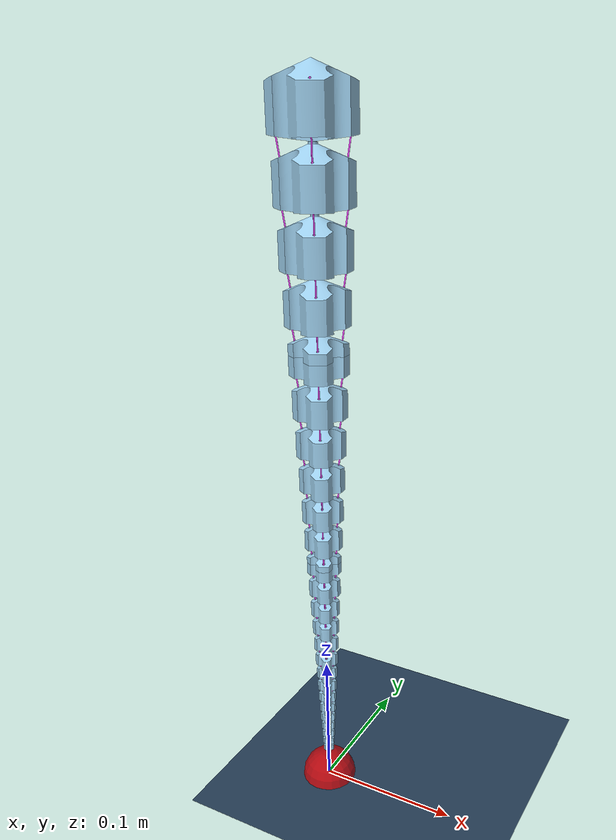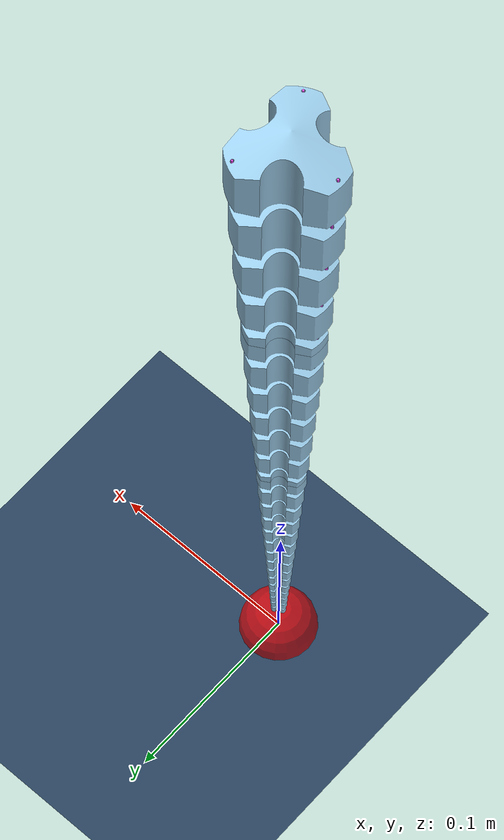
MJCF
<mujoco model="scene">
    <include file="spirob.xml" />

    <visual>
        <headlight diffuse="0.6 0.6 0.6" ambient="0.3 0.3 0.3" specular="0 0 0" />
        <rgba haze="0.15 0.25 0.35 1" />
        <global azimuth="160" elevation="-20" offwidth="1920" offheight="1080" />
    </visual>

    <asset>
        <texture type="skybox" builtin="gradient" rgb1="0.3 0.5 0.7" rgb2="0 0 0" width="512"
            height="3072" />
        <texture type="2d" name="groundplane" builtin="checker" mark="edge" rgb1="0.2 0.3 0.4"
            rgb2="0.1 0.2 0.3"
            markrgb="0.8 0.8 0.8" width="300" height="300" />
        <material name="groundplane" texture="groundplane" texuniform="true" texrepeat="5 5"
            reflectance="0.2" />
    </asset>

    <worldbody>
        <light pos="0 0 3.5" dir="0 0 -1" directional="true" />
        <geom name="floor" size="0 0 0.05" pos="0 0 0" type="plane" material="groundplane" />

        <!-- Target for end-effector tracking -->
        <body name="target" mocap="true">
            <geom name="target_vis" type="sphere" size="0.02" rgba="1 0 0 0.7" contype="0" conaffinity="0"/>
        </body>
    </worldbody>
</mujoco>

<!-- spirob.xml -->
<!-- Generated using onshape-to-robot -->
<!-- Onshape https://cad.onshape.com/documents/11f47046aadde998d93845f5/w/2219ecd5bc279fe0ecc107c4/e/786bc53f5acd65211f6c0c24 -->
<mujoco model="my-SpiRob">
  <compiler angle="radian" meshdir="assets" autolimits="true"/>
  <default>
    <default class="my-SpiRob">
      <joint frictionloss="0.1" armature="0.005"/>
      <position kp="50" dampratio="1"/>
      <default class="visual">
        <geom type="mesh" contype="0" conaffinity="0" group="2"/>
      </default>
      <default class="collision">
        <geom group="3"/>
      </default>
    </default>
  </default>
  <worldbody>
    <!-- Link segment_1__configuration_default -->
    <body name="segment_1__configuration_default" pos="0 0 0.5" euler="0 -1.5708 0" childclass="my-SpiRob">
      <inertial pos="-0.023719 1.84225e-08 1.05571e-08" mass="0.052215" fullinertia="1.47577e-05 1.26546e-05 1.26546e-05 -1.09343e-11 1.25193e-11 -2.59551e-12"/>
      <!-- Part segment_1__configuration_default -->
      <geom type="mesh" class="visual" pos="0 0 0" quat="1 0 0 0" mesh="segment_1__configuration_default" material="segment_1__configuration_default_material"/>
      <geom type="mesh" class="collision" pos="0 0 0" quat="1 0 0 0" mesh="segment_1__configuration_default" material="segment_1__configuration_default_material"/>
      <!-- Frame 1 -->
      <site group="3" name="1" pos="-0.0100544 -5.44356e-20 0.0250952" quat="0.5 0.5 0.5 0.5"/>
      <!-- Frame 2 -->
      <site group="3" name="2" pos="-0.0400151 -5.44356e-20 0.0250952" quat="0.5 0.5 0.5 0.5"/>
      <!-- Frame 3 -->
      <site group="3" name="3" pos="-0.0100552 0.0217331 -0.0125476" quat="0.5 0.5 0.5 0.5"/>
      <!-- Frame 4 -->
      <site group="3" name="4" pos="-0.0400151 0.0217331 -0.0125476" quat="0.5 0.5 0.5 0.5"/>
      <!-- Frame 5 -->
      <site group="3" name="5" pos="-0.040015 -0.0217331 -0.0125476" quat="0.5 0.5 0.5 0.5"/>
      <!-- Frame 6 -->
      <site group="3" name="6" pos="-0.0100551 -0.0217331 -0.0125476" quat="0.5 0.5 0.5 0.5"/>
      <!-- Link segment_2__configuration_default -->
      <body name="segment_2__configuration_default" pos="-0.042844 -1.48645e-19 -8.96728e-22" quat="6.93681e-16 -0 1 8.33698e-16">
        <!-- Joint from segment_1__configuration_default to segment_2__configuration_default -->
        <joint axis="0 0 1" name="x_1" type="hinge" damping="0.1"/>
        <joint axis="0 1 0" name="y_1" type="hinge" damping="0.1"/>
        <inertial pos="0.0218709 1.13482e-08 -5.9967e-09" mass="0.040989" fullinertia="9.84761e-06 8.45722e-06 8.45722e-06 1.22598e-13 1.0973e-11 2.50017e-12"/>
        <!-- Part segment_2__configuration_default -->
        <geom type="mesh" class="visual" pos="-0.042844 -1.28885e-35 2.62344e-18" quat="9.60979e-18 -0 -1 5.46996e-17" mesh="segment_2__configuration_default" material="segment_2__configuration_default_material"/>
        <geom type="mesh" class="collision" pos="-0.042844 -1.28885e-35 2.62344e-18" quat="9.60979e-18 -0 -1 5.46996e-17" mesh="segment_2__configuration_default" material="segment_2__configuration_default_material"/>
        <!-- Frame 7 -->
        <site group="3" name="7" pos="0.00916355 -0.0198802 0.0114778" quat="0.5 -0.5 -0.5 0.5"/>
        <!-- Frame 8 -->
        <site group="3" name="8" pos="0.00916268 -5.44356e-20 -0.0229556" quat="0.5 -0.5 -0.5 0.5"/>
        <!-- Frame 9 -->
        <site group="3" name="9" pos="0.00916308 0.0198802 0.0114778" quat="0.5 -0.5 -0.5 0.5"/>
        <!-- Frame 10 -->
        <site group="3" name="10" pos="0.036951 0.0198802 0.0114778" quat="0.5 -0.5 -0.5 0.5"/>
        <!-- Frame 11 -->
        <site group="3" name="11" pos="0.036951 -5.44356e-20 -0.0229556" quat="0.5 -0.5 -0.5 0.5"/>
        <!-- Frame 12 -->
        <site group="3" name="12" pos="0.0369508 -0.0198802 0.0114778" quat="0.5 -0.5 -0.5 0.5"/>
        <!-- Link segment_3__configuration_default -->
        <body name="segment_3__configuration_default" pos="0.0395269 2.51311e-19 -2.42033e-18" quat="1 -0 0 7.01374e-19">
          <!-- Joint from segment_2__configuration_default to segment_3__configuration_default -->
          <joint axis="0 0 1" name="x_2" type="hinge" damping="0.1"/>
          <joint axis="0 1 0" name="y_2" type="hinge" damping="0.1"/>
          <inertial pos="0.0201766 1.11039e-08 -5.4109e-09" mass="0.0321555" fullinertia="6.5695e-06 5.64464e-06 5.64464e-06 7.62967e-14 7.34676e-12 1.60018e-12"/>
          <!-- Part segment_3__configuration_default -->
          <geom type="mesh" class="visual" pos="-0.0823709 0 5.04376e-18" quat="0 0 1 0" mesh="segment_3__configuration_default" material="segment_3__configuration_default_material"/>
          <geom type="mesh" class="collision" pos="-0.0823709 0 5.04376e-18" quat="0 0 1 0" mesh="segment_3__configuration_default" material="segment_3__configuration_default_material"/>
          <!-- Frame 13 -->
          <site group="3" name="13" pos="0.0341241 0.0181707 0.0104908" quat="0.5 -0.5 -0.5 0.5"/>
          <!-- Frame 14 -->
          <site group="3" name="14" pos="0.00834014 0.0181707 0.0104908" quat="0.5 -0.5 -0.5 0.5"/>
          <!-- Frame 15 -->
          <site group="3" name="15" pos="0.00834105 -0.0181707 0.0104908" quat="0.5 -0.5 -0.5 0.5"/>
          <!-- Frame 16 -->
          <site group="3" name="16" pos="0.0341239 -0.0181707 0.0104908" quat="0.5 -0.5 -0.5 0.5"/>
          <!-- Frame 17 -->
          <site group="3" name="17" pos="0.0341241 -5.44356e-20 -0.0209817" quat="0.5 -0.5 -0.5 0.5"/>
          <!-- Frame 18 -->
          <site group="3" name="18" pos="0.00834012 -5.44356e-20 -0.0209817" quat="0.5 -0.5 -0.5 0.5"/>
          <!-- Link segment_4__configuration_default -->
          <body name="segment_4__configuration_default" pos="0.0364667 3.56718e-18 -2.23294e-18" quat="1 0 -1.11022e-16 8.67362e-19">
            <!-- Joint from segment_3__configuration_default to segment_4__configuration_default -->
            <joint axis="0 0 1" name="x_3" type="hinge" damping="0.1"/>
            <joint axis="0 1 0" name="y_3" type="hinge" damping="0.1"/>
            <inertial pos="0.0186135 1.05568e-08 -1.17938e-08" mass="0.0252212" fullinertia="4.3814e-06 3.76659e-06 3.76659e-06 3.94885e-14 4.94e-12 3.07795e-13"/>
            <!-- Part segment_4__configuration_default -->
            <geom type="mesh" class="visual" pos="-0.118838 -7.70372e-34 7.2767e-18" quat="0 0 1 0" mesh="segment_4__configuration_default" material="segment_4__configuration_default_material"/>
            <geom type="mesh" class="collision" pos="-0.118838 -7.70372e-34 7.2767e-18" quat="0 0 1 0" mesh="segment_4__configuration_default" material="segment_4__configuration_default_material"/>
            <!-- Frame 19 -->
            <site group="3" name="19" pos="0.00758095 0.0165936 0.0095803" quat="0.5 -0.5 -0.5 0.5"/>
            <!-- Frame 20 -->
            <site group="3" name="20" pos="0.00758153 -5.44356e-20 -0.0191606" quat="0.5 -0.5 -0.5 0.5"/>
            <!-- Frame 21 -->
            <site group="3" name="21" pos="0.00758306 -0.0165936 0.0095803" quat="0.5 -0.5 -0.5 0.5"/>
            <!-- Frame 22 -->
            <site group="3" name="22" pos="0.0315159 -0.0165936 0.0095803" quat="0.5 -0.5 -0.5 0.5"/>
            <!-- Frame 23 -->
            <site group="3" name="23" pos="0.031516 0.0165936 0.0095803" quat="0.5 -0.5 -0.5 0.5"/>
            <!-- Frame 24 -->
            <site group="3" name="24" pos="0.031516 -5.44356e-20 -0.0191606" quat="0.5 -0.5 -0.5 0.5"/>
            <!-- Link segment_5_1__configuration_default -->
            <body name="segment_5_1__configuration_default" pos="0.0336433 -3.46945e-18 -2.06006e-18" quat="1 0 0 0">
              <!-- Joint from segment_4__configuration_default to segment_5_1__configuration_default -->
              <joint axis="0 0 1" name="x_4" type="hinge" damping="0.1"/>
              <joint axis="0 1 0" name="y_4" type="hinge" damping="0.1"/>
              <inertial pos="0.0171713 4.27188e-09 -1.04214e-08" mass="0.0197778" fullinertia="2.92117e-06 2.51273e-06 2.51273e-06 7.33127e-13 1.21513e-13 -9.49471e-14"/>
              <!-- Part segment_5_2__configuration_default -->
              <geom type="mesh" class="visual" pos="-0.152481 9.32588e-18 9.33676e-18" quat="3.06162e-17 0 -1 -4.03897e-28" mesh="segment_5_2__configuration_default" material="segment_5_2__configuration_default_material"/>
              <geom type="mesh" class="collision" pos="-0.152481 9.32588e-18 9.33676e-18" quat="3.06162e-17 0 -1 -4.03897e-28" mesh="segment_5_2__configuration_default" material="segment_5_2__configuration_default_material"/>
              <!-- Part segment_5_1__configuration_default -->
              <geom type="mesh" class="visual" pos="-0.152481 -1.09476e-47 9.33676e-18" quat="0 0 1 0" mesh="segment_5_1__configuration_default" material="segment_5_1__configuration_default_material"/>
              <geom type="mesh" class="collision" pos="-0.152481 -1.09476e-47 9.33676e-18" quat="0 0 1 0" mesh="segment_5_1__configuration_default" material="segment_5_1__configuration_default_material"/>
              <!-- Frame 25 -->
              <site group="3" name="25" pos="0.00696165 0.0151386 0.00874025" quat="0.5 -0.5 -0.5 0.5"/>
              <!-- Frame 26 -->
              <site group="3" name="26" pos="0.00696375 -0.0151386 0.00874025" quat="0.5 -0.5 -0.5 0.5"/>
              <!-- Frame 27 -->
              <site group="3" name="27" pos="0.00696158 -5.44356e-20 -0.0174805" quat="0.5 -0.5 -0.5 0.5"/>
              <!-- Frame 28 -->
              <site group="3" name="28" pos="0.0290589 0.0151386 0.00874025" quat="0.5 -0.5 -0.5 0.5"/>
              <!-- Frame 29 -->
              <site group="3" name="29" pos="0.0290589 -8.06032e-19 -0.0174805" quat="0.5 -0.5 -0.5 0.5"/>
              <!-- Frame 30 -->
              <site group="3" name="30" pos="0.0290587 -0.0151386 0.00874025" quat="0.5 -0.5 -0.5 0.5"/>
              <!-- Link segment_6__configuration_default -->
              <body name="segment_6__configuration_default" pos="0.0310386 6.93889e-18 -1.90057e-18" quat="1 0 0 0">
                <!-- Joint from segment_5_1__configuration_default to segment_6__configuration_default -->
                <joint axis="0 0 1" name="x_5" type="hinge" damping="0.1"/>
                <joint axis="0 1 0" name="y_5" type="hinge" damping="0.1"/>
                <inertial pos="0.0158407 9.68272e-09 -2.25308e-08" mass="0.0155055" fullinertia="1.94689e-06 1.67579e-06 1.67579e-06 1.39054e-13 5.12254e-13 -3.50338e-13"/>
                <!-- Part segment_6__configuration_default -->
                <geom type="mesh" class="visual" pos="-0.183519 0 1.12373e-17" quat="0 0 1 0" mesh="segment_6__configuration_default" material="segment_6__configuration_default_material"/>
                <geom type="mesh" class="collision" pos="-0.183519 0 1.12373e-17" quat="0 0 1 0" mesh="segment_6__configuration_default" material="segment_6__configuration_default_material"/>
                <!-- Frame 31 -->
                <site group="3" name="31" pos="0.00623536 0.0137962 0.00796523" quat="0.5 -0.5 -0.5 0.5"/>
                <!-- Frame 32 -->
                <site group="3" name="32" pos="0.00623682 -0.0137962 0.00796523" quat="0.5 -0.5 -0.5 0.5"/>
                <!-- Frame 33 -->
                <site group="3" name="33" pos="0.0062347 -5.44356e-20 -0.0159305" quat="0.5 -0.5 -0.5 0.5"/>
                <!-- Frame 34 -->
                <site group="3" name="34" pos="0.0268901 0.0137962 0.00796523" quat="0.5 -0.5 -0.5 0.5"/>
                <!-- Frame 35 -->
                <site group="3" name="35" pos="0.0268901 -5.44356e-20 -0.0159305" quat="0.5 -0.5 -0.5 0.5"/>
                <!-- Frame 36 -->
                <site group="3" name="36" pos="0.0268899 -0.0137962 0.00796523" quat="0.5 -0.5 -0.5 0.5"/>
                <!-- Link segment_7__configuration_default -->
                <body name="segment_7__configuration_default" pos="0.0286355 3.46945e-17 -1.75342e-18" quat="1 -4.2727e-16 4.44089e-16 -2.83183e-19">
                  <!-- Joint from segment_6__configuration_default to segment_7__configuration_default -->
                  <joint axis="0 0 1" name="x_6" type="hinge" damping="0.1"/>
                  <joint axis="0 1 0" name="y_6" type="hinge" damping="0.1"/>
                  <inertial pos="0.0146131 9.45033e-09 -2.1313e-08" mass="0.0121525" fullinertia="1.29707e-06 1.11725e-06 1.11724e-06 9.35572e-14 3.44514e-13 -2.76958e-13"/>
                  <!-- Part segment_7__configuration_default -->
                  <geom type="mesh" class="visual" pos="-0.212155 0 1.29907e-17" quat="0 0 1 0" mesh="segment_7__configuration_default" material="segment_7__configuration_default_material"/>
                  <geom type="mesh" class="collision" pos="-0.212155 0 1.29907e-17" quat="0 0 1 0" mesh="segment_7__configuration_default" material="segment_7__configuration_default_material"/>
                  <!-- Frame 37 -->
                  <site group="3" name="37" pos="0.00564008 0.0125577 0.00725022" quat="0.5 -0.5 -0.5 0.5"/>
                  <!-- Frame 38 -->
                  <site group="3" name="38" pos="0.00563888 -5.44356e-20 -0.0145004" quat="0.5 -0.5 -0.5 0.5"/>
                  <!-- Frame 39 -->
                  <site group="3" name="39" pos="0.00564067 -0.0125577 0.00725022" quat="0.5 -0.5 -0.5 0.5"/>
                  <!-- Frame 40 -->
                  <site group="3" name="40" pos="0.0248419 -0.0125577 0.00725022" quat="0.5 -0.5 -0.5 0.5"/>
                  <!-- Frame 41 -->
                  <site group="3" name="41" pos="0.0248421 0.0125577 0.00725022" quat="0.5 -0.5 -0.5 0.5"/>
                  <!-- Frame 42 -->
                  <site group="3" name="42" pos="0.0248421 -5.44356e-20 -0.0145004" quat="0.5 -0.5 -0.5 0.5"/>
                  <!-- Link segment_8__configuration_default -->
                  <body name="segment_8__configuration_default" pos="0.0264185 4.19961e-17 -1.61767e-18" quat="1 -0 1.249e-16 1.25123e-18">
                    <!-- Joint from segment_7__configuration_default to segment_8__configuration_default -->
                    <joint axis="0 0 1" name="x_7" type="hinge" damping="0.1"/>
                    <joint axis="0 1 0" name="y_7" type="hinge" damping="0.1"/>
                    <inertial pos="0.0134806 9.2626e-09 -2.02192e-08" mass="0.00952109" fullinertia="8.63766e-07 7.44581e-07 7.44579e-07 6.32964e-14 2.31894e-13 -2.16115e-13"/>
                    <!-- Part segment_8__configuration_default -->
                    <geom type="mesh" class="visual" pos="-0.238574 -3.62701e-19 1.46084e-17" quat="0 0 1 0" mesh="segment_8__configuration_default" material="segment_8__configuration_default_material"/>
                    <geom type="mesh" class="collision" pos="-0.238574 -3.62701e-19 1.46084e-17" quat="0 0 1 0" mesh="segment_8__configuration_default" material="segment_8__configuration_default_material"/>
                    <!-- Frame 43 -->
                    <site group="3" name="43" pos="0.0229527 -4.17137e-19 -0.0131811" quat="0.5 -0.5 -0.5 0.5"/>
                    <!-- Frame 44 -->
                    <site group="3" name="44" pos="0.00508945 -4.17137e-19 -0.0131811" quat="0.5 -0.5 -0.5 0.5"/>
                    <!-- Frame 45 -->
                    <site group="3" name="45" pos="0.00509111 0.0114152 0.00659057" quat="0.5 -0.5 -0.5 0.5"/>
                    <!-- Frame 46 -->
                    <site group="3" name="46" pos="0.0229527 0.0114152 0.00659057" quat="0.5 -0.5 -0.5 0.5"/>
                    <!-- Frame 47 -->
                    <site group="3" name="47" pos="0.0229525 -0.0114152 0.00659057" quat="0.5 -0.5 -0.5 0.5"/>
                    <!-- Frame 48 -->
                    <site group="3" name="48" pos="0.00509068 -0.0114152 0.00659057" quat="0.5 -0.5 -0.5 0.5"/>
                    <!-- Link segment_9__configuration_default -->
                    <body name="segment_9__configuration_default" pos="0.0243731 2.92174e-17 -1.49242e-18" quat="1 -4.99676e-16 3.33067e-16 3.44807e-18">
                      <!-- Joint from segment_8__configuration_default to segment_9__configuration_default -->
                      <joint axis="0 0 1" name="x_8" type="hinge" damping="0.1"/>
                      <joint axis="0 1 0" name="y_8" type="hinge" damping="0.1"/>
                      <inertial pos="0.0124357 9.25317e-09 -1.95027e-08" mass="0.00745628" fullinertia="5.74939e-07 4.96005e-07 4.96003e-07 4.4176e-14 1.56471e-13 -1.80729e-13"/>
                      <!-- Part segment_9__configuration_default -->
                      <geom type="mesh" class="visual" pos="-0.262947 1.2326e-32 1.61008e-17" quat="3.06162e-17 -0 -1 6.37496e-17" mesh="segment_9__configuration_default" material="segment_9__configuration_default_material"/>
                      <geom type="mesh" class="collision" pos="-0.262947 1.2326e-32 1.61008e-17" quat="3.06162e-17 -0 -1 6.37496e-17" mesh="segment_9__configuration_default" material="segment_9__configuration_default_material"/>
                      <!-- Frame 49 -->
                      <site group="3" name="49" pos="0.0212094 -0.0103611 0.00598198" quat="0.5 -0.5 -0.5 0.5"/>
                      <!-- Frame 50 -->
                      <site group="3" name="50" pos="0.0045823 -0.0103611 0.00598198" quat="0.5 -0.5 -0.5 0.5"/>
                      <!-- Frame 52 -->
                      <site group="3" name="52" pos="0.0212096 0.0103611 0.00598198" quat="0.5 -0.5 -0.5 0.5"/>
                      <!-- Frame 53 -->
                      <site group="3" name="53" pos="0.00458299 0.0103611 0.00598198" quat="0.5 -0.5 -0.5 0.5"/>
                      <!-- Frame 54 -->
                      <site group="3" name="54" pos="0.00458181 -5.44356e-20 -0.011964" quat="0.5 -0.5 -0.5 0.5"/>
                      <!-- Frame 55 -->
                      <site group="3" name="55" pos="0.0212095 -5.44356e-20 -0.011964" quat="0.5 -0.5 -0.5 0.5"/>
                      <!-- Link segment_10__configuration_default -->
                      <body name="segment_10__configuration_default" pos="0.0224861 -1.98059e-18 -1.37688e-18" quat="1 0 1.11022e-16 -1.0641e-17">
                        <!-- Joint from segment_9__configuration_default to segment_10__configuration_default -->
                        <joint axis="0 0 1" name="x_9" type="hinge" damping="0.1"/>
                        <joint axis="0 1 0" name="y_9" type="hinge" damping="0.1"/>
                        <inertial pos="0.0114718 1.09038e-08 -1.15964e-08" mass="0.00583625" fullinertia="3.82493e-07 3.30251e-07 3.30251e-07 2.66586e-14 1.13152e-13 -3.34482e-14"/>
                        <!-- Part segment_10__configuration_default -->
                        <geom type="mesh" class="visual" pos="-0.285433 -1.2326e-32 1.74777e-17" quat="0 0 1 0" mesh="segment_10__configuration_default" material="segment_10__configuration_default_material"/>
                        <geom type="mesh" class="collision" pos="-0.285433 -1.2326e-32 1.74777e-17" quat="0 0 1 0" mesh="segment_10__configuration_default" material="segment_10__configuration_default_material"/>
                        <!-- Frame 51 -->
                        <site group="3" name="51" pos="0.0196014 -5.44356e-20 -0.010841" quat="0.5 -0.5 -0.5 0.5"/>
                        <!-- Frame 56 -->
                        <site group="3" name="56" pos="0.00411437 0.00938862 0.00542052" quat="0.5 -0.5 -0.5 0.5"/>
                        <!-- Frame 57 -->
                        <site group="3" name="57" pos="0.00411352 -5.44356e-20 -0.010841" quat="0.5 -0.5 -0.5 0.5"/>
                        <!-- Frame 58 -->
                        <site group="3" name="58" pos="0.00411448 -0.00938862 0.00542052" quat="0.5 -0.5 -0.5 0.5"/>
                        <!-- Frame 59 -->
                        <site group="3" name="59" pos="0.0196013 0.00938862 0.00542052" quat="0.5 -0.5 -0.5 0.5"/>
                        <!-- Frame 60 -->
                        <site group="3" name="60" pos="0.0196012 -0.00938862 0.00542052" quat="0.5 -0.5 -0.5 0.5"/>
                        <!-- Link segment_11_2__configuration_default -->
                        <body name="segment_11_2__configuration_default" pos="0.0207452 5.55112e-17 -1.27028e-18" quat="1 5.51286e-16 0 -2.11798e-17">
                          <!-- Joint from segment_10__configuration_default to segment_11_2__configuration_default -->
                          <joint axis="0 0 1" name="x_10" type="hinge" damping="0.1"/>
                          <joint axis="0 1 0" name="y_10" type="hinge" damping="0.1"/>
                          <inertial pos="0.0105825 4.66794e-09 -4.96433e-09" mass="0.00456538" fullinertia="2.54326e-07 2.19766e-07 2.19766e-07 8.8537e-14 5.7459e-14 -8.39475e-15"/>
                          <!-- Part segmentt_11_1__configuration_default -->
                          <geom type="mesh" class="visual" pos="-0.306178 0 1.8748e-17" quat="0 0 1 0" mesh="segmentt_11_1__configuration_default" material="segmentt_11_1__configuration_default_material"/>
                          <geom type="mesh" class="collision" pos="-0.306178 0 1.8748e-17" quat="0 0 1 0" mesh="segmentt_11_1__configuration_default" material="segmentt_11_1__configuration_default_material"/>
                          <!-- Part segment_11_2__configuration_default -->
                          <geom type="mesh" class="visual" pos="-0.306178 0 1.8748e-17" quat="3.30788e-17 0 -1 4.19873e-17" mesh="segment_11_2__configuration_default" material="segment_11_2__configuration_default_material"/>
                          <geom type="mesh" class="collision" pos="-0.306178 0 1.8748e-17" quat="3.30788e-17 0 -1 4.19873e-17" mesh="segment_11_2__configuration_default" material="segment_11_2__configuration_default_material"/>
                          <!-- Frame 61 -->
                          <site group="3" name="61" pos="0.0180827 -0.00849142 0.00490253" quat="0.5 -0.5 -0.5 0.5"/>
                          <!-- Frame 62 -->
                          <site group="3" name="62" pos="0.00373368 -0.00849142 0.00490253" quat="0.5 -0.5 -0.5 0.5"/>
                          <!-- Frame 63 -->
                          <site group="3" name="63" pos="0.00373261 -5.44356e-20 -0.00980505" quat="0.5 -0.5 -0.5 0.5"/>
                          <!-- Frame 64 -->
                          <site group="3" name="64" pos="0.0180829 -5.44356e-20 -0.00980505" quat="0.5 -0.5 -0.5 0.5"/>
                          <!-- Frame 65 -->
                          <site group="3" name="65" pos="0.0180829 0.00849142 0.00490253" quat="0.5 -0.5 -0.5 0.5"/>
                          <!-- Frame 66 -->
                          <site group="3" name="66" pos="0.00373294 0.00849142 0.00490253" quat="0.5 -0.5 -0.5 0.5"/>
                          <!-- Link segment_12__configuration_default -->
                          <body name="segment_12__configuration_default" pos="0.019139 5.55112e-17 -1.17193e-18" quat="1 4.52636e-16 -4.44089e-16 2.54034e-29">
                            <!-- Joint from segment_11_2__configuration_default to segment_12__configuration_default -->
                            <joint axis="0 0 1" name="x_11" type="hinge" damping="0.1"/>
                            <joint axis="0 1 0" name="y_11" type="hinge" damping="0.1"/>
                            <inertial pos="0.00976212 9.31267e-09 -1.61388e-08" mass="0.00356862" fullinertia="1.69004e-07 1.46151e-07 1.46151e-07 1.36414e-14 4.14922e-14 -8.79568e-14"/>
                            <!-- Part segment_12__configuration_default -->
                            <geom type="mesh" class="visual" pos="-0.325317 0 1.99199e-17" quat="0 0 1 0" mesh="segment_12__configuration_default" material="segment_12__configuration_default_material"/>
                            <geom type="mesh" class="collision" pos="-0.325317 0 1.99199e-17" quat="0 0 1 0" mesh="segment_12__configuration_default" material="segment_12__configuration_default_material"/>
                            <!-- Frame 67 -->
                            <site group="3" name="67" pos="0.0167487 -0.00766369 0.00442464" quat="0.5 -0.5 -0.5 0.5"/>
                            <!-- Frame 68 -->
                            <site group="3" name="68" pos="0.00328566 -0.00766369 0.00442464" quat="0.5 -0.5 -0.5 0.5"/>
                            <!-- Frame 69 -->
                            <site group="3" name="69" pos="0.0167489 0.00766369 0.00442464" quat="0.5 -0.5 -0.5 0.5"/>
                            <!-- Frame 70 -->
                            <site group="3" name="70" pos="0.00328347 0.00766369 0.00442464" quat="0.5 -0.5 -0.5 0.5"/>
                            <!-- Frame 71 -->
                            <site group="3" name="71" pos="0.0167489 -5.44356e-20 -0.00884927" quat="0.5 -0.5 -0.5 0.5"/>
                            <!-- Frame 72 -->
                            <site group="3" name="72" pos="0.00328429 -5.44356e-20 -0.00884927" quat="0.5 -0.5 -0.5 0.5"/>
                            <!-- Link segment_13__configuration_default -->
                            <body name="segment_13__configuration_default" pos="0.0176573 2.46519e-32 -1.0812e-18" quat="1 -0 -1.11022e-15 -8.69362e-26">
                              <!-- Joint from segment_12__configuration_default to segment_13__configuration_default -->
                              <joint axis="0 0 1" name="x_12" type="hinge" damping="0.1"/>
                              <joint axis="0 1 0" name="y_12" type="hinge" damping="0.1"/>
                              <inertial pos="0.00900538 9.25531e-09 -1.56183e-08" mass="0.00278699" fullinertia="1.12241e-07 9.71256e-08 9.71253e-08 9.72953e-15 2.78331e-14 -6.52431e-14"/>
                              <!-- Part segment_13__configuration_default -->
                              <geom type="mesh" class="visual" pos="-0.342974 0 2.10011e-17" quat="3.44552e-17 -0 -1 -1.11022e-16" mesh="segment_13__configuration_default" material="segment_13__configuration_default_material"/>
                              <geom type="mesh" class="collision" pos="-0.342974 0 2.10011e-17" quat="3.44552e-17 -0 -1 -1.11022e-16" mesh="segment_13__configuration_default" material="segment_13__configuration_default_material"/>
                              <!-- Frame 73 -->
                              <site group="3" name="73" pos="0.0154859 -0.00690005 0.00398375" quat="0.5 -0.5 -0.5 0.5"/>
                              <!-- Frame 74 -->
                              <site group="3" name="74" pos="0.0029181 -0.00690005 0.00398375" quat="0.5 -0.5 -0.5 0.5"/>
                              <!-- Frame 75 -->
                              <site group="3" name="75" pos="0.00291607 -5.44356e-20 -0.00796749" quat="0.5 -0.5 -0.5 0.5"/>
                              <!-- Frame 76 -->
                              <site group="3" name="76" pos="0.0154861 -5.44356e-20 -0.00796749" quat="0.5 -0.5 -0.5 0.5"/>
                              <!-- Frame 77 -->
                              <site group="3" name="77" pos="0.0154861 0.00690005 0.00398375" quat="0.5 -0.5 -0.5 0.5"/>
                              <!-- Frame 78 -->
                              <site group="3" name="78" pos="0.00291581 0.00690005 0.00398375" quat="0.5 -0.5 -0.5 0.5"/>
                              <!-- Link segment_14__configuration_default -->
                              <body name="segment_14__configuration_default" pos="0.0162902 2.4929e-18 -9.97487e-19" quat="1 -0 -1.11022e-16 6.53517e-19">
                                <!-- Joint from segment_13__configuration_default to segment_14__configuration_default -->
                                <joint axis="0 0 1" name="x_13" type="hinge" damping="0.1"/>
                                <joint axis="0 1 0" name="y_13" type="hinge" damping="0.1"/>
                                <inertial pos="0.00830739 9.27243e-09 -1.52171e-08" mass="0.0021742" fullinertia="7.44986e-08 6.44937e-08 6.44935e-08 7.04989e-15 1.86759e-14 -4.83793e-14"/>
                                <!-- Part segment_14__configuration_default -->
                                <geom type="mesh" class="visual" pos="-0.359264 0 2.19986e-17" quat="3.06162e-17 -0 -1 3.49785e-17" mesh="segment_14__configuration_default" material="segment_14__configuration_default_material"/>
                                <geom type="mesh" class="collision" pos="-0.359264 0 2.19986e-17" quat="3.06162e-17 -0 -1 3.49785e-17" mesh="segment_14__configuration_default" material="segment_14__configuration_default_material"/>
                                <!-- Frame 79 -->
                                <site group="3" name="79" pos="0.00257692 0.00619553 0.00357699" quat="0.5 -0.5 -0.5 0.5"/>
                                <!-- Frame 80 -->
                                <site group="3" name="80" pos="0.0143211 0.00619553 0.00357699" quat="0.5 -0.5 -0.5 0.5"/>
                                <!-- Frame 81 -->
                                <site group="3" name="81" pos="0.0143209 -0.00619553 0.00357699" quat="0.5 -0.5 -0.5 0.5"/>
                                <!-- Frame 82 -->
                                <site group="3" name="82" pos="0.00257885 -0.00619553 0.00357699" quat="0.5 -0.5 -0.5 0.5"/>
                                <!-- Frame 83 -->
                                <site group="3" name="83" pos="0.00257673 -5.44356e-20 -0.00715398" quat="0.5 -0.5 -0.5 0.5"/>
                                <!-- Frame 84 -->
                                <site group="3" name="84" pos="0.0143211 -5.44356e-20 -0.00715398" quat="0.5 -0.5 -0.5 0.5"/>
                                <!-- Link segment_15__configuration_default -->
                                <body name="segment_15__configuration_default" pos="0.015029 -1.40093e-19 -9.20259e-19" quat="1 0 -1.11022e-16 -3.46945e-18">
                                  <!-- Joint from segment_14__configuration_default to segment_15__configuration_default -->
                                  <joint axis="0 0 1" name="x_14" type="hinge" damping="0.1"/>
                                  <joint axis="0 1 0" name="y_14" type="hinge" damping="0.1"/>
                                  <inertial pos="0.00766367 9.36767e-09 -1.49414e-08" mass="0.00169393" fullinertia="4.94204e-08 4.2787e-08 4.27868e-08 5.19142e-15 1.25334e-14 -3.58968e-14"/>
                                  <!-- Part segment_15__configuration_default -->
                                  <geom type="mesh" class="visual" pos="-0.374293 1.40093e-19 2.29189e-17" quat="3.24416e-17 -0 -1 -1.11022e-16" mesh="segment_15__configuration_default" material="segment_15__configuration_default_material"/>
                                  <geom type="mesh" class="collision" pos="-0.374293 1.40093e-19 2.29189e-17" quat="3.24416e-17 -0 -1 -1.11022e-16" mesh="segment_15__configuration_default" material="segment_15__configuration_default_material"/>
                                  <!-- Frame 85 -->
                                  <site group="3" name="85" pos="0.0132462 8.56574e-20 -0.00640345" quat="0.5 -0.5 -0.5 0.5"/>
                                  <!-- Frame 86 -->
                                  <site group="3" name="86" pos="0.00226401 8.56574e-20 -0.00640345" quat="0.5 -0.5 -0.5 0.5"/>
                                  <!-- Frame 87 -->
                                  <site group="3" name="87" pos="0.00226454 0.00554555 0.00320173" quat="0.5 -0.5 -0.5 0.5"/>
                                  <!-- Frame 88 -->
                                  <site group="3" name="88" pos="0.0132462 0.00554555 0.00320173" quat="0.5 -0.5 -0.5 0.5"/>
                                  <!-- Frame 89 -->
                                  <site group="3" name="89" pos="0.0132461 -0.00554555 0.00320173" quat="0.5 -0.5 -0.5 0.5"/>
                                  <!-- Frame 90 -->
                                  <site group="3" name="90" pos="0.00226586 -0.00554555 0.00320173" quat="0.5 -0.5 -0.5 0.5"/>
                                  <!-- Link segment_16__configuration_default -->
                                  <body name="segment_16__configuration_default" pos="0.0138654 -5.79682e-17 -8.49011e-19" quat="1 0 2.22045e-16 -2.66107e-27">
                                    <!-- Joint from segment_15__configuration_default to segment_16__configuration_default -->
                                    <joint axis="0 0 1" name="x_15" type="hinge" damping="0.1"/>
                                    <joint axis="0 1 0" name="y_15" type="hinge" damping="0.1"/>
                                    <inertial pos="0.0070701 9.54699e-09 -1.48007e-08" mass="0.00131765" fullinertia="3.27686e-08 2.83576e-08 2.83575e-08 3.88379e-15 8.41076e-15 -2.66862e-14"/>
                                    <!-- Part segment_16__configuration_default -->
                                    <geom type="mesh" class="visual" pos="-0.388159 -2.46519e-32 2.37679e-17" quat="0 0 1 0" mesh="segment_16__configuration_default" material="segment_16__configuration_default_material"/>
                                    <geom type="mesh" class="collision" pos="-0.388159 -2.46519e-32 2.37679e-17" quat="0 0 1 0" mesh="segment_16__configuration_default" material="segment_16__configuration_default_material"/>
                                    <!-- Frame 91 -->
                                    <site group="3" name="91" pos="0.00197662 0.0049459 0.00285551" quat="0.5 -0.5 -0.5 0.5"/>
                                    <!-- Frame 92 -->
                                    <site group="3" name="92" pos="0.0019771 -0.0049459 0.00285551" quat="0.5 -0.5 -0.5 0.5"/>
                                    <!-- Frame 93 -->
                                    <site group="3" name="93" pos="0.0122546 0.0049459 0.00285551" quat="0.5 -0.5 -0.5 0.5"/>
                                    <!-- Frame 94 -->
                                    <site group="3" name="94" pos="0.0122544 -0.0049459 0.00285551" quat="0.5 -0.5 -0.5 0.5"/>
                                    <!-- Frame 95 -->
                                    <site group="3" name="95" pos="0.0122546 -5.44356e-20 -0.00571103" quat="0.5 -0.5 -0.5 0.5"/>
                                    <!-- Frame 96 -->
                                    <site group="3" name="96" pos="0.00197584 -5.44356e-20 -0.00571103" quat="0.5 -0.5 -0.5 0.5"/>
                                    <!-- Link segment_17__configuration_default -->
                                    <body name="segment_17__configuration_default" pos="0.0127919 7.39557e-32 -7.83279e-19" quat="1 1.00791e-16 1.11022e-16 2.76101e-30">
                                      <!-- Joint from segment_16__configuration_default to segment_17__configuration_default -->
                                      <joint axis="0 0 1" name="x_16" type="hinge" damping="0.1"/>
                                      <joint axis="0 1 0" name="y_16" type="hinge" damping="0.1"/>
                                      <inertial pos="0.00652292 9.81916e-09 -1.48077e-08" mass="0.00102295" fullinertia="2.17199e-08 1.87732e-08 1.87731e-08 2.94922e-15 5.64236e-15 -1.99111e-14"/>
                                      <!-- Part segment_17__configuration_default -->
                                      <geom type="mesh" class="visual" pos="-0.400951 0 2.45512e-17" quat="3.44552e-17 -0 -1 -1.11022e-16" mesh="segment_17__configuration_default" material="segment_17__configuration_default_material"/>
                                      <geom type="mesh" class="collision" pos="-0.400951 0 2.45512e-17" quat="3.44552e-17 -0 -1 -1.11022e-16" mesh="segment_17__configuration_default" material="segment_17__configuration_default_material"/>
                                      <!-- Frame 97 -->
                                      <site group="3" name="97" pos="0.00170936 -5.44356e-20 -0.00507222" quat="0.5 -0.5 -0.5 0.5"/>
                                      <!-- Frame 98 -->
                                      <site group="3" name="98" pos="0.00171125 0.00439267 0.00253611" quat="0.5 -0.5 -0.5 0.5"/>
                                      <!-- Frame 99 -->
                                      <site group="3" name="99" pos="0.00171068 -0.00439267 0.00253611" quat="0.5 -0.5 -0.5 0.5"/>
                                      <!-- Frame 100 -->
                                      <site group="3" name="100" pos="0.0113398 0.00439267 0.00253611" quat="0.5 -0.5 -0.5 0.5"/>
                                      <!-- Frame 101 -->
                                      <site group="3" name="101" pos="0.0113397 -5.44356e-20 -0.00507222" quat="0.5 -0.5 -0.5 0.5"/>
                                      <!-- Frame 102 -->
                                      <site group="3" name="102" pos="0.0113396 -0.00439267 0.00253611" quat="0.5 -0.5 -0.5 0.5"/>
                                      <!-- Link segment_18__configuration_default -->
                                      <body name="segment_18__configuration_default" pos="0.0118015 0 -7.22636e-19" quat="1 3.52658e-16 0 -6.97554e-17">
                                        <!-- Joint from segment_17__configuration_default to segment_18__configuration_default -->
                                        <joint axis="0 0 1" name="x_17" type="hinge" damping="0.1"/>
                                        <joint axis="0 1 0" name="y_17" type="hinge" damping="0.1"/>
                                        <inertial pos="0.00601868 1.12794e-08 -1.49464e-08" mass="0.000792269" fullinertia="1.43944e-08 1.24124e-08 1.24124e-08 3.24018e-15 5.31283e-15 -1.36141e-14"/>
                                        <!-- Part segment_18__configuration_default -->
                                        <geom type="mesh" class="visual" pos="-0.412752 0 2.52738e-17" quat="2.93883e-17 -0 -1 1.97215e-31" mesh="segment_18__configuration_default" material="segment_18__configuration_default_material"/>
                                        <geom type="mesh" class="collision" pos="-0.412752 0 2.52738e-17" quat="2.93883e-17 -0 -1 1.97215e-31" mesh="segment_18__configuration_default" material="segment_18__configuration_default_material"/>
                                        <!-- Frame 103 -->
                                        <site group="3" name="103" pos="0.00146467 -0.00388227 0.00224143" quat="0.5 -0.5 -0.5 0.5"/>
                                        <!-- Frame 104 -->
                                        <site group="3" name="104" pos="0.00146533 0.00388227 0.00224143" quat="0.5 -0.5 -0.5 0.5"/>
                                        <!-- Frame 105 -->
                                        <site group="3" name="105" pos="0.00146395 -5.44356e-20 -0.00448286" quat="0.5 -0.5 -0.5 0.5"/>
                                        <!-- Frame 106 -->
                                        <site group="3" name="106" pos="0.0104957 -5.44356e-20 -0.00448286" quat="0.5 -0.5 -0.5 0.5"/>
                                        <!-- Frame 107 -->
                                        <site group="3" name="107" pos="0.0104958 0.00388227 0.00224143" quat="0.5 -0.5 -0.5 0.5"/>
                                        <!-- Frame 108 -->
                                        <site group="3" name="108" pos="0.0104956 -0.00388227 0.00224143" quat="0.5 -0.5 -0.5 0.5"/>
                                        <!-- Link segment_19__configuration_default -->
                                        <body name="segment_19__configuration_default" pos="0.0108878 2.93959e-18 -6.66688e-19" quat="1 3.70179e-16 -2.22045e-16 3.46945e-18">
                                          <!-- Joint from segment_18__configuration_default to segment_19__configuration_default -->
                                          <joint axis="0 0 1" name="x_18" type="hinge" damping="0.1"/>
                                          <joint axis="0 1 0" name="y_18" type="hinge" damping="0.1"/>
                                          <inertial pos="0.00555715 7.27659e-09 -6.67771e-09" mass="0.00064337" fullinertia="1.00445e-08 8.61084e-09 8.61082e-09 1.27925e-15 3.36671e-15 2.04602e-16"/>
                                          <!-- Part segment_19__configuration_default -->
                                          <geom type="mesh" class="visual" pos="-0.42364 0 2.59405e-17" quat="0 0 1 0" mesh="segment_19__configuration_default" material="segment_19__configuration_default_material"/>
                                          <geom type="mesh" class="collision" pos="-0.42364 0 2.59405e-17" quat="0 0 1 0" mesh="segment_19__configuration_default" material="segment_19__configuration_default_material"/>
                                          <!-- Frame 109 -->
                                          <site group="3" name="109" pos="0.00134585 0.00341139 0.00196957" quat="0.5 -0.5 -0.5 0.5"/>
                                          <!-- Frame 110 -->
                                          <site group="3" name="110" pos="0.00134619 2.72178e-19 -0.00393914" quat="0.5 -0.5 -0.5 0.5"/>
                                          <!-- Frame 111 -->
                                          <site group="3" name="111" pos="0.0013471 -0.00341139 0.00196957" quat="0.5 -0.5 -0.5 0.5"/>
                                          <!-- Frame 112 -->
                                          <site group="3" name="112" pos="0.0096843 -0.00341139 0.00196957" quat="0.5 -0.5 -0.5 0.5"/>
                                          <!-- Frame 113 -->
                                          <site group="3" name="113" pos="0.00968426 0.00341139 0.00196957" quat="0.5 -0.5 -0.5 0.5"/>
                                          <!-- Frame 114 -->
                                          <site group="3" name="114" pos="0.00968438 2.72178e-19 -0.00393914" quat="0.5 -0.5 -0.5 0.5"/>
                                          <!-- Link segment_20__configuration_default -->
                                          <body name="segment_20__configuration_default" pos="0.0100449 -5.85204e-17 -6.15071e-19" quat="1 -0 -6.66134e-16 -3.46945e-18">
                                            <!-- Joint from segment_19__configuration_default to segment_20__configuration_default -->
                                            <joint axis="0 0 1" name="x_19" type="hinge" damping="0.1"/>
                                            <joint axis="0 1 0" name="y_19" type="hinge" damping="0.1"/>
                                            <inertial pos="0.0051282 3.50084e-09 -8.91244e-09" mass="0.000500239" fullinertia="6.68925e-09 5.71721e-09 5.7172e-09 6.90923e-16 3.08248e-15 5.09188e-15"/>
                                            <!-- Part segment_20__configuration_default -->
                                            <geom type="mesh" class="visual" pos="-0.433685 1.2326e-32 2.65555e-17" quat="0 0 1 0" mesh="segment_20__configuration_default" material="segment_20__configuration_default_material"/>
                                            <geom type="mesh" class="collision" pos="-0.433685 1.2326e-32 2.65555e-17" quat="0 0 1 0" mesh="segment_20__configuration_default" material="segment_20__configuration_default_material"/>
                                            <!-- Frame 115 -->
                                            <site group="3" name="115" pos="0.00113692 2.72178e-19 -0.00343751" quat="0.5 -0.5 -0.5 0.5"/>
                                            <!-- Frame 116 -->
                                            <site group="3" name="116" pos="0.00113693 0.00297697 0.00171875" quat="0.5 -0.5 -0.5 0.5"/>
                                            <!-- Frame 117 -->
                                            <site group="3" name="117" pos="0.00113833 -0.00297697 0.00171875" quat="0.5 -0.5 -0.5 0.5"/>
                                            <!-- Frame 118 -->
                                            <site group="3" name="118" pos="0.00896592 -0.00297697 0.00171875" quat="0.5 -0.5 -0.5 0.5"/>
                                            <!-- Frame 119 -->
                                            <site group="3" name="119" pos="0.00896592 0.00297697 0.00171875" quat="0.5 -0.5 -0.5 0.5"/>
                                            <!-- Frame 120 -->
                                            <site group="3" name="120" pos="0.00896601 2.72178e-19 -0.00343751" quat="0.5 -0.5 -0.5 0.5"/>
                                            <!-- Link segment_21__configuration_default -->
                                            <body name="segment_21__configuration_default" pos="0.00926718 5.55112e-17 -5.67451e-19" quat="1 -5.65017e-16 -7.77156e-16 -1.75852e-27">
                                              <!-- Joint from segment_20__configuration_default to segment_21__configuration_default -->
                                              <joint axis="0 0 1" name="x_20" type="hinge" damping="0.1"/>
                                              <joint axis="0 1 0" name="y_20" type="hinge" damping="0.1"/>
                                              <inertial pos="0.0047331 3.56445e-09 -8.81065e-09" mass="0.000388137" fullinertia="4.4574e-09 3.79283e-09 3.79282e-09 3.9189e-16 2.24124e-15 3.61103e-15"/>
                                              <!-- Part segment_21__configuration_default -->
                                              <geom type="mesh" class="visual" pos="-0.442952 -2.46519e-32 2.7123e-17" quat="0 0 1 0" mesh="segment_21__configuration_default" material="segment_21__configuration_default_material"/>
                                              <geom type="mesh" class="collision" pos="-0.442952 -2.46519e-32 2.7123e-17" quat="0 0 1 0" mesh="segment_21__configuration_default" material="segment_21__configuration_default_material"/>
                                              <!-- Frame 121 -->
                                              <site group="3" name="121" pos="0.000945399 -0.00257618 0.00148736" quat="0.5 -0.5 -0.5 0.5"/>
                                              <!-- Frame 122 -->
                                              <site group="3" name="122" pos="0.000944099 0.00257618 0.00148736" quat="0.5 -0.5 -0.5 0.5"/>
                                              <!-- Frame 123 -->
                                              <site group="3" name="123" pos="0.000943825 2.72178e-19 -0.00297472" quat="0.5 -0.5 -0.5 0.5"/>
                                              <!-- Frame 124 -->
                                              <site group="3" name="124" pos="0.00830316 -0.00257618 0.00148736" quat="0.5 -0.5 -0.5 0.5"/>
                                              <!-- Frame 125 -->
                                              <site group="3" name="125" pos="0.00830327 2.72178e-19 -0.00297472" quat="0.5 -0.5 -0.5 0.5"/>
                                              <!-- Frame 126 -->
                                              <site group="3" name="126" pos="0.00830319 0.00257618 0.00148736" quat="0.5 -0.5 -0.5 0.5"/>
                                              <!-- Link segment_22__configuration_default -->
                                              <body name="segment_22__configuration_default" pos="0.00854969 -3.13292e-18 -5.23518e-19" quat="1 -0 1.11022e-16 -1.84596e-16">
                                                <!-- Joint from segment_21__configuration_default to segment_22__configuration_default -->
                                                <joint axis="0 0 1" name="x_21" type="hinge" damping="0.1"/>
                                                <joint axis="0 1 0" name="y_21" type="hinge" damping="0.1"/>
                                                <inertial pos="0.00436944 2.66192e-09 -1.25865e-08" mass="0.000300377" fullinertia="2.97287e-09 2.51373e-09 2.51372e-09 3.82255e-16 1.11675e-15 1.15501e-15"/>
                                                <!-- Part segment_22__configuration_default -->
                                                <geom type="mesh" class="visual" pos="-0.451502 0 2.76465e-17" quat="0 0 1 0" mesh="segment_22__configuration_default" material="segment_22__configuration_default_material"/>
                                                <geom type="mesh" class="collision" pos="-0.451502 0 2.76465e-17" quat="0 0 1 0" mesh="segment_22__configuration_default" material="segment_22__configuration_default_material"/>
                                                <!-- Frame 127 -->
                                                <site group="3" name="127" pos="0.000767093 -0.00220642 0.00127388" quat="0.5 -0.5 -0.5 0.5"/>
                                                <!-- Frame 128 -->
                                                <site group="3" name="128" pos="0.000766201 0.00220642 0.00127388" quat="0.5 -0.5 -0.5 0.5"/>
                                                <!-- Frame 129 -->
                                                <site group="3" name="129" pos="0.000765773 2.72178e-19 -0.00254776" quat="0.5 -0.5 -0.5 0.5"/>
                                                <!-- Frame 130 -->
                                                <site group="3" name="130" pos="0.00769184 2.72178e-19 -0.00254776" quat="0.5 -0.5 -0.5 0.5"/>
                                                <!-- Frame 131 -->
                                                <site group="3" name="131" pos="0.00769178 0.00220642 0.00127388" quat="0.5 -0.5 -0.5 0.5"/>
                                                <!-- Frame 132 -->
                                                <site group="3" name="132" pos="0.00769172 -0.00220642 0.00127388" quat="0.5 -0.5 -0.5 0.5"/>
                                                <!-- Link segment_23__configuration_default -->
                                                <body name="segment_23__configuration_default" pos="0.00788776 1.11022e-16 -4.82986e-19" quat="1 -0 -0 -0">
                                                  <!-- Joint from segment_22__configuration_default to segment_23__configuration_default -->
                                                  <joint axis="0 0 1" name="x_22" type="hinge" damping="0.1"/>
                                                  <joint axis="0 1 0" name="y_22" type="hinge" damping="0.1"/>
                                                  <inertial pos="0.00403502 2.9391e-09 -1.25947e-08" mass="0.000231713" fullinertia="1.98525e-09 1.664e-09 1.66399e-09 2.49462e-16 8.08726e-16 7.74659e-16"/>
                                                  <!-- Part segment_23__configuration_default -->
                                                  <geom type="mesh" class="visual" pos="-0.45939 4.93038e-32 2.81295e-17" quat="0 0 1 0" mesh="segment_23__configuration_default" material="segment_23__configuration_default_material"/>
                                                  <geom type="mesh" class="collision" pos="-0.45939 4.93038e-32 2.81295e-17" quat="0 0 1 0" mesh="segment_23__configuration_default" material="segment_23__configuration_default_material"/>
                                                  <!-- Frame 133 -->
                                                  <site group="3" name="133" pos="0.00712764 -0.00186529 0.00107693" quat="0.5 -0.5 -0.5 0.5"/>
                                                  <!-- Frame 134 -->
                                                  <site group="3" name="134" pos="0.00712772 0.00186529 0.00107693" quat="0.5 -0.5 -0.5 0.5"/>
                                                  <!-- Frame 135 -->
                                                  <site group="3" name="135" pos="0.00712776 2.72178e-19 -0.00215385" quat="0.5 -0.5 -0.5 0.5"/>
                                                  <!-- Frame 136 -->
                                                  <site group="3" name="136" pos="0.000601736 2.72178e-19 -0.00215385" quat="0.5 -0.5 -0.5 0.5"/>
                                                  <!-- Frame 137 -->
                                                  <site group="3" name="137" pos="0.000602573 -0.00186529 0.00107693" quat="0.5 -0.5 -0.5 0.5"/>
                                                  <!-- Frame 138 -->
                                                  <site group="3" name="138" pos="0.000601957 0.00186529 0.00107693" quat="0.5 -0.5 -0.5 0.5"/>
                                                  <!-- Link segment_24__configuration_default -->
                                                  <body name="segment_24__configuration_default" pos="0.00727707 0 -4.45592e-19" quat="1 -0 -1.11022e-16 -5.3449e-28">
                                                    <!-- Joint from segment_23__configuration_default to segment_24__configuration_default -->
                                                    <joint axis="0 0 1" name="x_23" type="hinge" damping="0.1"/>
                                                    <joint axis="0 1 0" name="y_23" type="hinge" damping="0.1"/>
                                                    <inertial pos="0.00372792 1.31738e-09 -7.05259e-09" mass="0.000178028" fullinertia="1.3279e-09 1.09982e-09 1.09982e-09 -2.80934e-16 9.44067e-16 5.3083e-16"/>
                                                    <!-- Part segment_24__configuration_default -->
                                                    <geom type="mesh" class="visual" pos="-0.466667 0 2.85751e-17" quat="0 0 1 0" mesh="segment_24__configuration_default" material="segment_24__configuration_default_material"/>
                                                    <geom type="mesh" class="collision" pos="-0.466667 0 2.85751e-17" quat="0 0 1 0" mesh="segment_24__configuration_default" material="segment_24__configuration_default_material"/>
                                                    <!-- Frame 139 -->
                                                    <site group="3" name="139" pos="0.000519786 2.72178e-19 -0.00179044" quat="0.5 -0.5 -0.5 0.5"/>
                                                    <!-- Frame 140 -->
                                                    <site group="3" name="140" pos="0.000519786 0.00155057 0.000895222" quat="0.5 -0.5 -0.5 0.5"/>
                                                    <!-- Frame 141 -->
                                                    <site group="3" name="141" pos="0.000519786 -0.00155057 0.000895222" quat="0.5 -0.5 -0.5 0.5"/>
                                                    <!-- Frame 142 -->
                                                    <site group="3" name="142" pos="0.00660702 -0.00155057 0.000895222" quat="0.5 -0.5 -0.5 0.5"/>
                                                    <!-- Frame 143 -->
                                                    <site group="3" name="143" pos="0.00660718 0.00155057 0.000895222" quat="0.5 -0.5 -0.5 0.5"/>
                                                    <!-- Frame 144 -->
                                                    <site group="3" name="144" pos="0.00660714 2.72178e-19 -0.00179044" quat="0.5 -0.5 -0.5 0.5"/>
                                                    <!-- Link segment_25__configuration_default -->
                                                    <body name="segment_25__configuration_default" pos="0.00671367 3.28474e-18 -4.11094e-19" quat="1 -1.36525e-16 0 3.46945e-18">
                                                      <!-- Joint from segment_24__configuration_default to segment_25__configuration_default -->
                                                      <joint axis="0 0 1" name="x_24" type="hinge" damping="0.1"/>
                                                      <joint axis="0 1 0" name="y_24" type="hinge" damping="0.1"/>
                                                      <inertial pos="0.00344702 1.56464e-09 -7.15512e-09" mass="0.000136181" fullinertia="1e-09 1e-09 1e-09 -2.67785e-16 7.62836e-16 2.9113e-16"/>
                                                      <!-- Part segment_25__configuration_default -->
                                                      <geom type="mesh" class="visual" pos="-0.47338 0 2.89862e-17" quat="0 0 1 0" mesh="segment_25__configuration_default" material="segment_25__configuration_default_material"/>
                                                      <geom type="mesh" class="collision" pos="-0.47338 0 2.89862e-17" quat="0 0 1 0" mesh="segment_25__configuration_default" material="segment_25__configuration_default_material"/>
                                                      <!-- Frame 145 -->
                                                      <site group="3" name="145" pos="0.00612652 0.00126022 0.000727586" quat="0.5 -0.5 -0.5 0.5"/>
                                                      <!-- Frame 146 -->
                                                      <site group="3" name="146" pos="0.00612651 2.72178e-19 -0.00145517" quat="0.5 -0.5 -0.5 0.5"/>
                                                      <!-- Frame 147 -->
                                                      <site group="3" name="147" pos="0.00612633 -0.00126022 0.000727586" quat="0.5 -0.5 -0.5 0.5"/>
                                                      <!-- Frame 148 -->
                                                      <site group="3" name="148" pos="0.000479543 -0.00126022 0.000727586" quat="0.5 -0.5 -0.5 0.5"/>
                                                      <!-- Frame 149 -->
                                                      <site group="3" name="149" pos="0.000479543 2.72178e-19 -0.00145517" quat="0.5 -0.5 -0.5 0.5"/>
                                                      <!-- Frame 150 -->
                                                      <site group="3" name="150" pos="0.000479543 0.00126022 0.000727586" quat="0.5 -0.5 -0.5 0.5"/>
                                                      <body name="attachment" pos="0.007 0.0 0.0" quat="0 0 0 1">
                                                        <site name="ee" rgba="1 0 0 1" size="0.001" group="1"/>
                                                      </body>
                                                    </body>
                                                  </body>
                                                </body>
                                              </body>
                                            </body>
                                          </body>
                                        </body>
                                      </body>
                                    </body>
                                  </body>
                                </body>
                              </body>
                            </body>
                          </body>
                        </body>
                      </body>
                    </body>
                  </body>
                </body>
              </body>
            </body>
          </body>
        </body>
      </body>
    </body>
  </worldbody>
  <asset>
    <mesh file="segment_17__configuration_default.stl"/>
    <mesh file="segment_8__configuration_default.stl"/>
    <mesh file="segment_3__configuration_default.stl"/>
    <mesh file="segment_15__configuration_default.stl"/>
    <mesh file="segment_10__configuration_default.stl"/>
    <mesh file="segment_25__configuration_default.stl"/>
    <mesh file="segment_9__configuration_default.stl"/>
    <mesh file="segment_20__configuration_default.stl"/>
    <mesh file="segment_13__configuration_default.stl"/>
    <mesh file="segment_16__configuration_default.stl"/>
    <mesh file="segment_12__configuration_default.stl"/>
    <mesh file="segment_22__configuration_default.stl"/>
    <mesh file="segment_2__configuration_default.stl"/>
    <mesh file="segment_21__configuration_default.stl"/>
    <mesh file="segment_5_2__configuration_default.stl"/>
    <mesh file="segment_19__configuration_default.stl"/>
    <mesh file="segment_24__configuration_default.stl"/>
    <mesh file="segment_18__configuration_default.stl"/>
    <mesh file="segment_1__configuration_default.stl"/>
    <mesh file="segment_4__configuration_default.stl"/>
    <mesh file="segment_14__configuration_default.stl"/>
    <mesh file="segmentt_11_1__configuration_default.stl"/>
    <mesh file="segment_11_2__configuration_default.stl"/>
    <mesh file="segment_6__configuration_default.stl"/>
    <mesh file="segment_23__configuration_default.stl"/>
    <mesh file="segment_5_1__configuration_default.stl"/>
    <mesh file="segment_7__configuration_default.stl"/>
    <material name="segment_1__configuration_default_material" rgba="0.615686 0.811765 0.929412 1"/>
    <material name="segment_2__configuration_default_material" rgba="0.615686 0.811765 0.929412 1"/>
    <material name="segment_3__configuration_default_material" rgba="0.615686 0.811765 0.929412 1"/>
    <material name="segment_4__configuration_default_material" rgba="0.615686 0.811765 0.929412 1"/>
    <material name="segment_5_2__configuration_default_material" rgba="0.615686 0.811765 0.929412 1"/>
    <material name="segment_5_1__configuration_default_material" rgba="0.615686 0.811765 0.929412 1"/>
    <material name="segment_6__configuration_default_material" rgba="0.615686 0.811765 0.929412 1"/>
    <material name="segment_7__configuration_default_material" rgba="0.615686 0.811765 0.929412 1"/>
    <material name="segment_8__configuration_default_material" rgba="0.615686 0.811765 0.929412 1"/>
    <material name="segment_9__configuration_default_material" rgba="0.615686 0.811765 0.929412 1"/>
    <material name="segment_10__configuration_default_material" rgba="0.615686 0.811765 0.929412 1"/>
    <material name="segmentt_11_1__configuration_default_material" rgba="0.615686 0.811765 0.929412 1"/>
    <material name="segment_11_2__configuration_default_material" rgba="0.615686 0.811765 0.929412 1"/>
    <material name="segment_12__configuration_default_material" rgba="0.615686 0.811765 0.929412 1"/>
    <material name="segment_13__configuration_default_material" rgba="0.615686 0.811765 0.929412 1"/>
    <material name="segment_14__configuration_default_material" rgba="0.615686 0.811765 0.929412 1"/>
    <material name="segment_15__configuration_default_material" rgba="0.615686 0.811765 0.929412 1"/>
    <material name="segment_16__configuration_default_material" rgba="0.615686 0.811765 0.929412 1"/>
    <material name="segment_17__configuration_default_material" rgba="0.615686 0.811765 0.929412 1"/>
    <material name="segment_18__configuration_default_material" rgba="0.615686 0.811765 0.929412 1"/>
    <material name="segment_19__configuration_default_material" rgba="0.615686 0.811765 0.929412 1"/>
    <material name="segment_20__configuration_default_material" rgba="0.615686 0.811765 0.929412 1"/>
    <material name="segment_21__configuration_default_material" rgba="0.615686 0.811765 0.929412 1"/>
    <material name="segment_22__configuration_default_material" rgba="0.615686 0.811765 0.929412 1"/>
    <material name="segment_23__configuration_default_material" rgba="0.615686 0.811765 0.929412 1"/>
    <material name="segment_24__configuration_default_material" rgba="0.615686 0.811765 0.929412 1"/>
    <material name="segment_25__configuration_default_material" rgba="0.615686 0.811765 0.929412 1"/>
  </asset>
  <equality/>
  <tendon>
 	 <spatial name="tendon1" range="0.0 0.63" limited="auto" width=".0005" rgba="0.95 0.3 1 1">
  		<site site="1"/>
  		<site site="2"/>
		<site site="8"/>
		<site site="11"/>
		<site site="18"/>
		<site site="17"/>
		<site site="20"/>
		<site site="24"/>
		<site site="27"/>
		<site site="29"/>
		<site site="33"/>
		<site site="35"/>
		<site site="38"/>
		<site site="42"/>
		<site site="44"/>
		<site site="43"/>
		<site site="54"/>
		<site site="55"/>
		<site site="57"/>
		<site site="51"/>
		<site site="63"/>
		<site site="64"/>
		<site site="72"/>
		<site site="71"/>
		<site site="75"/>
		<site site="76"/>
		<site site="83"/>
		<site site="84"/>
		<site site="86"/>
		<site site="85"/>
		<site site="96"/>
		<site site="95"/>
		<site site="97"/>
		<site site="101"/>
		<site site="105"/>
		<site site="106"/>
		<site site="110"/>
		<site site="114"/>
		<site site="115"/>
		<site site="120"/>
		<site site="123"/>
		<site site="125"/>
		<site site="129"/>
		<site site="130"/>
		<site site="136"/>
		<site site="135"/>
		<site site="139"/>
		<site site="144"/>
		<site site="149"/>
		<site site="146"/>
  	</spatial>
  </tendon>
  <tendon>
 	 <spatial name="tendon2" range="0.0 0.63" limited="auto" width=".0005" rgba="0.95 0.3 1 1">
  		<site site="6"/>
  		<site site="5"/>
		<site site="7"/>
		<site site="12"/>
		<site site="15"/>
		<site site="16"/>
		<site site="21"/>
		<site site="22"/>
		<site site="26"/>
		<site site="30"/>
		<site site="32"/>
		<site site="36"/>
		<site site="39"/>
		<site site="40"/>
		<site site="48"/>
		<site site="47"/>
		<site site="50"/>
		<site site="49"/>
		<site site="58"/>
		<site site="60"/>
		<site site="62"/>
		<site site="61"/>
		<site site="68"/>
		<site site="67"/>
		<site site="74"/>
		<site site="73"/>
		<site site="82"/>
		<site site="81"/>
		<site site="90"/>
		<site site="89"/>
		<site site="92"/>
		<site site="94"/>
		<site site="99"/>
		<site site="102"/>
		<site site="103"/>
		<site site="108"/>
		<site site="111"/>
		<site site="117"/>
		<site site="118"/>
		<site site="121"/>
		<site site="124"/>
		<site site="127"/>
		<site site="132"/>
		<site site="137"/>
		<site site="133"/>
		<site site="141"/>
		<site site="142"/>
		<site site="148"/>
		<site site="147"/>
  	</spatial>
  </tendon>
  <tendon>
 	 <spatial name="tendon3" range="0.0 0.63" limited="auto" width=".0005" rgba="0.95 0.3 1 1">
  		<site site="3"/>
  		<site site="4"/>
		<site site="9"/>
		<site site="10"/>
		<site site="14"/>
		<site site="13"/>
		<site site="19"/>
		<site site="23"/>
		<site site="25"/>
		<site site="28"/>
		<site site="31"/>
		<site site="34"/>
		<site site="37"/>
		<site site="41"/>
		<site site="45"/>
		<site site="46"/>
		<site site="53"/>
		<site site="52"/>
		<site site="56"/>
		<site site="59"/>
		<site site="66"/>
		<site site="65"/>
		<site site="70"/>
		<site site="69"/>
		<site site="78"/>
		<site site="77"/>
		<site site="79"/>
		<site site="80"/>
		<site site="87"/>
		<site site="88"/>
		<site site="91"/>
		<site site="93"/>
		<site site="98"/>
		<site site="100"/>
		<site site="104"/>
		<site site="107"/>
		<site site="109"/>
		<site site="113"/>
		<site site="116"/>
		<site site="119"/>
		<site site="122"/>
		<site site="126"/>
		<site site="128"/>
		<site site="131"/>
		<site site="138"/>
		<site site="134"/>
		<site site="140"/>
		<site site="143"/>
		<site site="150"/>
		<site site="145"/>
  	</spatial>
  </tendon>
  <actuator>
    <motor name="tendon1_act" tendon="tendon1" gear="10"/>
    <motor name="tendon2_act" tendon="tendon2" gear="10"/>
    <motor name="tendon3_act" tendon="tendon3" gear="10"/>
  </actuator>
</mujoco>
